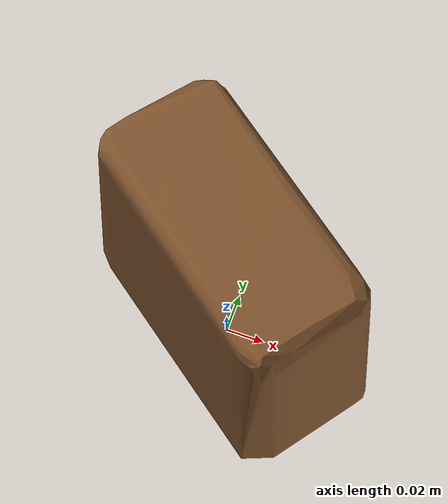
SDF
<?xml version='1.0'?>
<sdf version="1.4">
  <model name="nature_valley_soft_baked_oatmeal_squares_cinnamon_brown_sugar">
    <static>false</static>
    <link name="link">
      <inertial>
        <pose>0.001215313005341148 0.004780605192775516 0.07312292431572234 1.6160646066660989 -0.0020589271575675245 -2.2309821733576918</pose>
        <mass>0.144325430000697</mass>
        <inertia>
          <ixx>0.0004734264500768032</ixx>
          <ixy>1.3812970892009034e-21</ixy>
          <ixz>1.7450647964591478e-20</ixz>
          <iyy>0.0003114722105185634</iyy>
          <iyz>-2.69765264028784e-21</iyz>
          <izz>0.00028739088889871196</izz>
        </inertia>
      </inertial>
      <collision name="collision">
        <geometry>
          <mesh>
            <!-- Use a downsampled mesh for collisions -->
            <uri>model:///nature_valley_soft_baked_oatmeal_squares_cinnamon_brown_sugar/nature_valley_soft_baked_oatmeal_squares_cinnamon_brown_sugar_250_collision.obj</uri>
	        </mesh>
        </geometry>
        <surface>
      </surface>
      </collision>
      <visual name="visual">
        <geometry>
          <mesh>
            <uri>model:///nature_valley_soft_baked_oatmeal_squares_cinnamon_brown_sugar/optimized_tsdf_texture_mapped_mesh.obj</uri>
	        </mesh>
        </geometry>
        <material>
          <script>
            <uri>model:///nature_valley_soft_baked_oatmeal_squares_cinnamon_brown_sugar/nature_valley_soft_baked_oatmeal_squares_cinnamon_brown_sugar.material</uri>
            <name>nature_valley_soft_baked_oatmeal_squares_cinnamon_brown_sugar</name>
          </script>
        </material>
      </visual>
    </link>
  </model>
</sdf>
